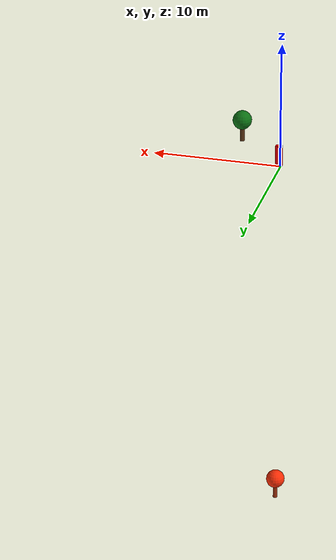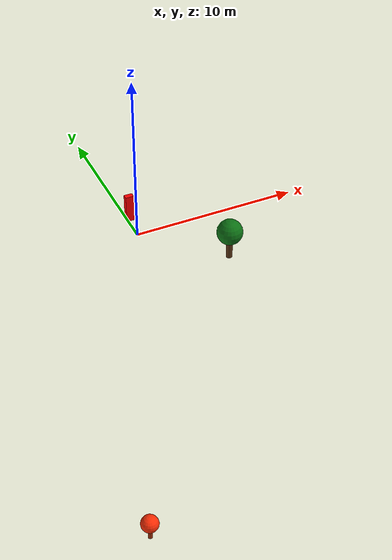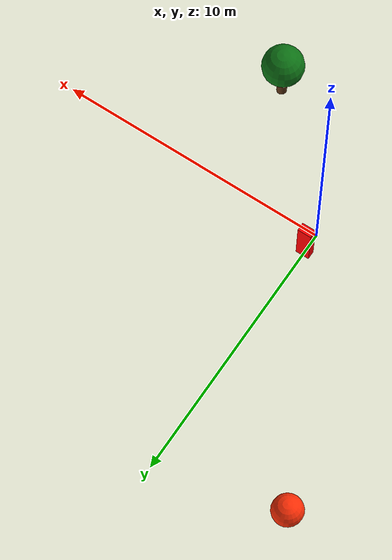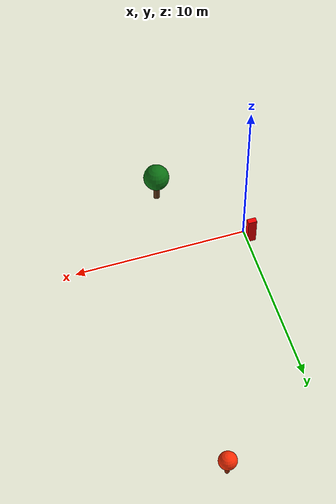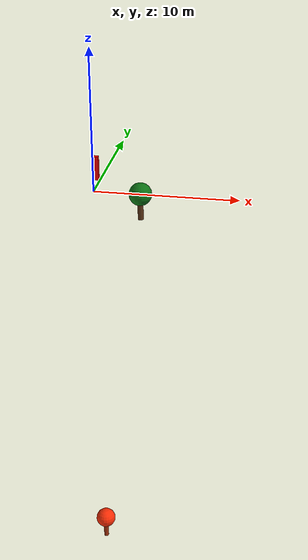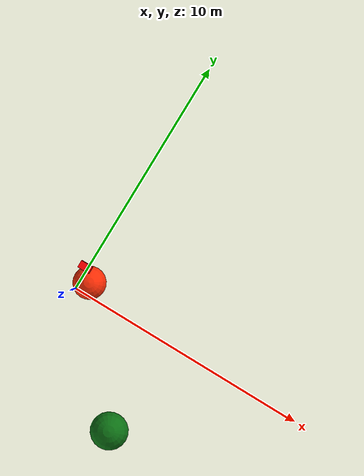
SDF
<sdf version="1.8">
 <world name="large_demo">
  <light name="sun" type="directional">
   <cast_shadows>0</cast_shadows>
   <pose>0 0 100 0 -0 0</pose>
   <diffuse>0.8 0.8 0.8 1</diffuse>
   <specular>0.8 0.8 0.8 1</specular>
   <direction>-0.5 0.1 -0.9</direction>
   <intensity>5</intensity>
  </light>
  <gravity>0 0 -9.81</gravity>
  <magnetic_field>6e-06 2.3e-05 -4.2e-05</magnetic_field>
  <atmosphere type="adiabatic"/>
  <physics name="default_physics" type="ignored">
   <max_step_size>0.01</max_step_size>
   <real_time_factor>1</real_time_factor>
   <real_time_update_rate>100</real_time_update_rate>
  </physics>
  <scene>
   <ambient>1.0 1.0 1.0 1</ambient>
   <background>0.6 0.8 1.0 1</background>
   <shadows>0</shadows>
   <grid>0</grid>
  </scene>
  <spherical_coordinates>
   <latitude_deg>0.0</latitude_deg>
   <longitude_deg>0.0</longitude_deg>
   <elevation>10.0</elevation>
   <heading_deg>0</heading_deg>
   <surface_model>EARTH_WGS84</surface_model>
  </spherical_coordinates>
  <model name="person1_heat">
   <pose>-0.0912 0.9265 1.355 0 0 0</pose>
   <static>true</static>
   <link name="link">
    <visual name="visual">
     <geometry><box><size>0.5 0.3 1.7</size></box></geometry>
     <material><ambient>1 0 0 1</ambient><diffuse>1 0 0 1</diffuse></material>
     <plugin filename="ignition-gazebo-thermal-system" name="ignition::gazebo::systems::Thermal">
      <temperature>310.0</temperature>
     </plugin>
    </visual>
   </link>
  </model>
  <model name="demo_tree_healthy">
   <pose>4 -4 0 0 0 0</pose>
   <static>true</static>
   <link name="tree">
    <collision name="trunk_collision">
     <pose>0 0 0.75 0 0 0</pose>
     <geometry><cylinder><radius>0.18</radius><length>1.5</length></cylinder></geometry>
    </collision>
    <collision name="canopy_collision">
     <pose>0 0 1.75 0 0 0</pose>
     <geometry><sphere><radius>0.75</radius></sphere></geometry>
    </collision>
    <visual name="trunk_visual">
     <pose>0 0 0.75 0 0 0</pose>
     <geometry><cylinder><radius>0.18</radius><length>1.5</length></cylinder></geometry>
     <material><ambient>0.35 0.20 0.08 1</ambient><diffuse>0.35 0.20 0.08 1</diffuse></material>
    </visual>
    <visual name="canopy_visual">
     <pose>0 0 1.75 0 0 0</pose>
     <geometry><sphere><radius>0.75</radius></sphere></geometry>
     <material><ambient>0.05 0.45 0.08 1</ambient><diffuse>0.05 0.45 0.08 1</diffuse></material>
    </visual>
   </link>
  </model>
  <model name="demo_tree_fire">
   <pose>0 0 -30 0 0 0</pose>
   <static>true</static>
   <link name="tree">
    <collision name="trunk_collision">
     <pose>0 0 0.75 0 0 0</pose>
     <geometry><cylinder><radius>0.18</radius><length>1.5</length></cylinder></geometry>
    </collision>
    <collision name="canopy_collision">
     <pose>0 0 1.75 0 0 0</pose>
     <geometry><sphere><radius>0.75</radius></sphere></geometry>
    </collision>
    <visual name="trunk_visual">
     <pose>0 0 0.75 0 0 0</pose>
     <geometry><cylinder><radius>0.18</radius><length>1.5</length></cylinder></geometry>
     <material><ambient>0.60 0.18 0.04 1</ambient><diffuse>0.60 0.18 0.04 1</diffuse></material>
    </visual>
    <visual name="canopy_visual">
     <pose>0 0 1.75 0 0 0</pose>
     <geometry><sphere><radius>0.75</radius></sphere></geometry>
     <material><ambient>1.0 0.18 0.02 1</ambient><diffuse>1.0 0.18 0.02 1</diffuse></material>
    </visual>
   </link>
  </model>
  <model name="demo_tree_burnt">
   <pose>0 0 -30 0 0 0</pose>
   <static>true</static>
   <link name="tree">
    <collision name="trunk_collision">
     <pose>0 0 0.75 0 0 0</pose>
     <geometry><cylinder><radius>0.18</radius><length>1.5</length></cylinder></geometry>
    </collision>
    <collision name="canopy_collision">
     <pose>0 0 1.75 0 0 0</pose>
     <geometry><sphere><radius>0.75</radius></sphere></geometry>
    </collision>
    <visual name="trunk_visual">
     <pose>0 0 0.75 0 0 0</pose>
     <geometry><cylinder><radius>0.18</radius><length>1.5</length></cylinder></geometry>
     <material><ambient>0.10 0.07 0.04 1</ambient><diffuse>0.10 0.07 0.04 1</diffuse></material>
    </visual>
    <visual name="canopy_visual">
     <pose>0 0 1.75 0 0 0</pose>
     <geometry><sphere><radius>0.75</radius></sphere></geometry>
     <material><ambient>0.12 0.08 0.04 1</ambient><diffuse>0.12 0.08 0.04 1</diffuse></material>
    </visual>
   </link>
  </model>
 </world>
</sdf>
